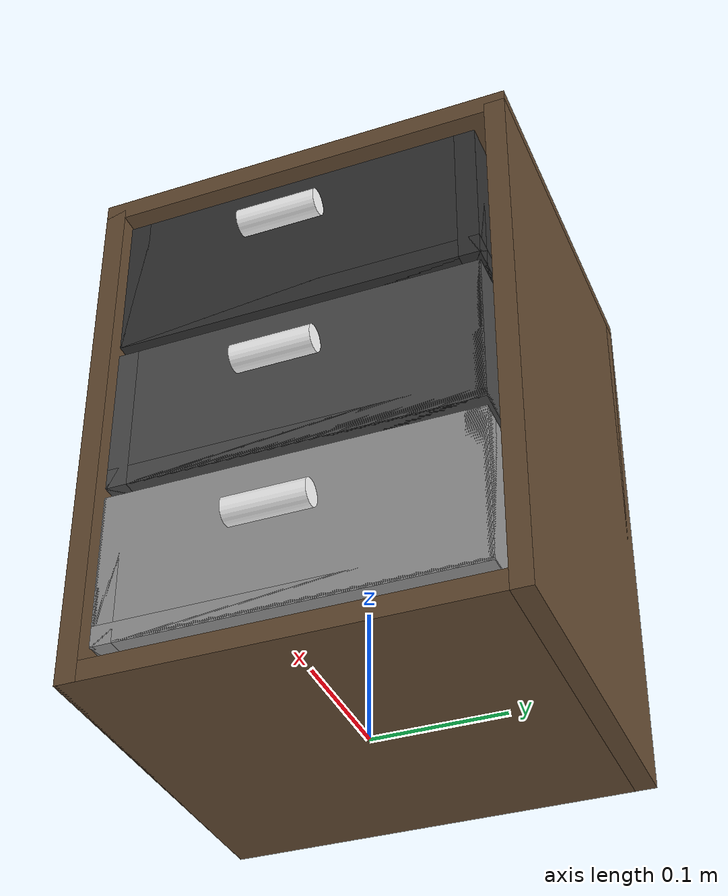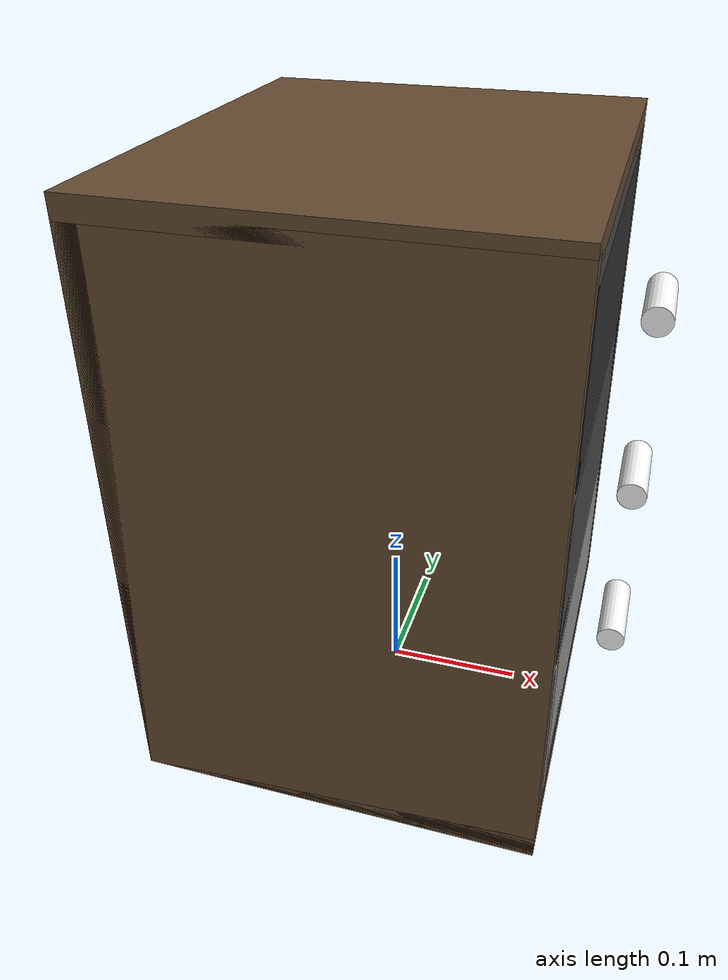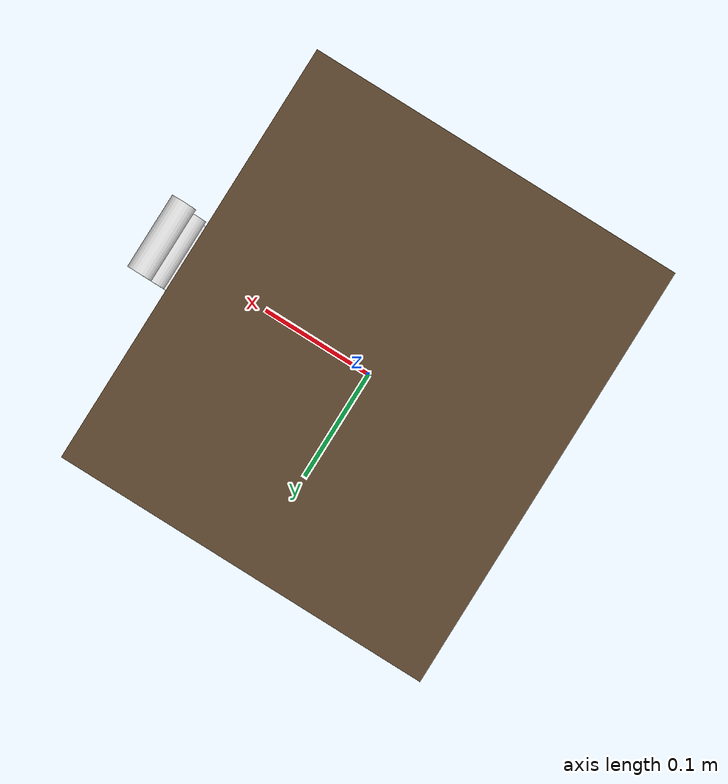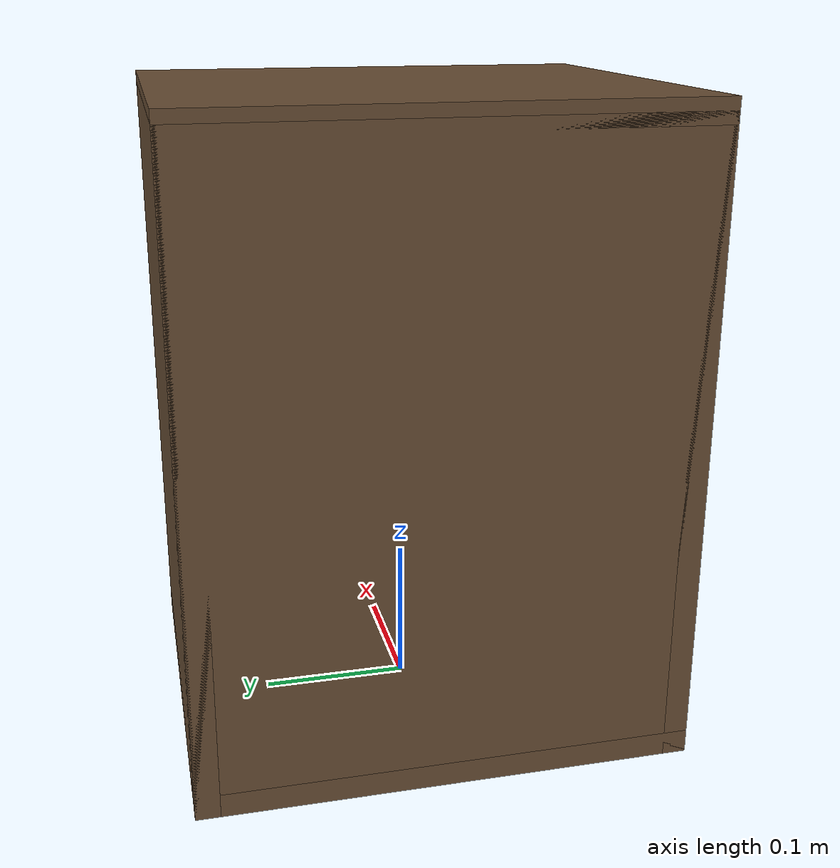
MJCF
<mujoco model="drawer">
  <compiler angle="radian" autolimits="true" />
  <option impratio="10" />
  <default>
    <default class="visual">
      <geom type="mesh" contype="0" conaffinity="0" group="2" />
    </default>
    <default class="collision">
      <geom type="mesh" group="3" />
    </default>
  </default>

  <asset>
    <material name="drawer_material" rgba="0.4 0.3 0.2 1" />
  </asset>
  <worldbody>
    <body name="drawer">
      <geom size="0.144 0.008 0.212" pos="0 -0.15600000000000003 0.212" class="visual" type="box"
        material="drawer_material" />
      <geom size="0.144 0.008 0.212" pos="0 0.15600000000000003 0.212" class="visual" type="box"
        material="drawer_material" />
      <geom size="0.144 0.164 0.008" pos="0 0 0.008" class="visual" type="box"
        material="drawer_material" />
      <geom size="0.144 0.164 0.008" pos="0 0 0.424" class="visual" type="box"
        material="drawer_material" />
      <geom size="0.008 0.164 0.212" pos="-0.136 0 0.212" class="visual" type="box"
        material="drawer_material" />

      <geom size="0.144 0.008 0.212" pos="0 -0.15600000000000003 0.212" class="collision" type="box" />
      <geom size="0.144 0.008 0.212" pos="0 0.15600000000000003 0.212" class="collision" type="box" />
      <geom size="0.144 0.164 0.008" pos="0 0 0.008" class="collision" type="box" />
      <geom size="0.144 0.164 0.008" pos="0 0 0.424" class="collision" type="box" />
      <geom size="0.008 0.164 0.212" pos="-0.136 0 0.212" class="collision" type="box" />

      <body name="bottom_drawer" pos="0.024 0 0.08399999999999999">
        <joint name="bottom_drawer_slide" type="slide" axis="1 0 0" limited="true" range="0 0.24"
          damping="50.0" frictionloss="1.0" />

        <!-- bottom -->
        <geom size="0.12 0.14 0.008" class="visual" type="box" pos="0 0 -0.052"
          material="drawer_material" rgba="0.6 0.6 0.6 1"/>
        <!-- left and right -->
        <geom size="0.12 0.008 0.06" class="visual" type="box" pos="0 0.132 0"
          material="drawer_material" rgba="0.6 0.6 0.6 1"/>
        <geom size="0.12 0.008 0.06" class="visual" type="box" pos="0 -0.132 0"
          material="drawer_material" rgba="0.6 0.6 0.6 1"/>
        <!-- front and back -->
        <geom size="0.008 0.14 0.06" class="visual" type="box" pos="0.11199999999999999 0 0"
          material="drawer_material" rgba="0.6 0.6 0.6 1"/>
        <geom size="0.008 0.14 0.06" class="visual" type="box" pos="-0.11199999999999999 0 0"
          material="drawer_material" />

        <!-- bottom -->
        <geom size="0.12 0.14 0.008" class="collision" type="box" pos="0 0 -0.052" />
        <!-- left and right -->
        <geom size="0.12 0.008 0.06" class="collision" type="box" pos="0 0.132 0" />
        <geom size="0.12 0.008 0.06" class="collision" type="box" pos="0 -0.132 0" />
        <!-- front and back -->
        <geom size="0.008 0.14 0.06" class="collision" type="box" pos="0.11199999999999999 0 0" />
        <geom size="0.008 0.14 0.06" class="collision" type="box" pos="-0.11199999999999999 0 0" />

        <body name="bottom_drawer_handle" pos="0.15 0 0" euler="1.57 0 0">
          <geom size="0.01 0.03" class="visual" type="cylinder" material="drawer_material" rgba="1 1 1 1" />
          <geom size="0.01 0.03" class="collision" type="cylinder" />
        </body>
      </body>

      <body name="middle_drawer" pos="0.024 0 0.212">
        <joint name="middle_drawer_slide" type="slide" axis="1 0 0" limited="true" range="0 0.24"
          damping="50.0" frictionloss="1.0" />

        <!-- bottom -->
        <geom size="0.12 0.14 0.008" class="visual" type="box" pos="0 0 -0.052"
          material="drawer_material" rgba="0.3 0.3 0.3 1"/>
        <!-- left and right -->
        <geom size="0.12 0.008 0.06" class="visual" type="box" pos="0 0.132 0"
          material="drawer_material" rgba="0.3 0.3 0.3 1"/>
        <geom size="0.12 0.008 0.06" class="visual" type="box" pos="0 -0.132 0"
          material="drawer_material" rgba="0.3 0.3 0.3 1"/>
        <!-- front and back -->
        <geom size="0.008 0.14 0.06" class="visual" type="box" pos="0.11199999999999999 0 0"
          material="drawer_material" rgba="0.3 0.3 0.3 1"/>
        <geom size="0.008 0.14 0.06" class="visual" type="box" pos="-0.11199999999999999 0 0"
          material="drawer_material" />

        <!-- bottom -->
        <geom size="0.12 0.14 0.01" class="collision" type="box" pos="0 0 -0.052" />
        <!-- left and right -->
        <geom size="0.12 0.01 0.06" class="collision" type="box" pos="0 0.132 0" />
        <geom size="0.12 0.01 0.06" class="collision" type="box" pos="0 -0.132 0" />
        <!-- front and back -->
        <geom size="0.01 0.14 0.06" class="collision" type="box" pos="0.11199999999999999 0 0" />
        <geom size="0.01 0.14 0.06" class="collision" type="box" pos="-0.11199999999999999 0 0" />

        <body name="middle_drawer_handle" pos="0.15 0 0" euler="1.57 0 0">
          <geom size="0.01 0.03" class="visual" type="cylinder" material="drawer_material" rgba="1 1 1 1" />
          <geom size="0.01 0.03" class="collision" type="cylinder" />
        </body>
      </body>

      <body name="top_drawer" pos="0.024 0 0.33999999999999997">
        <joint name="top_drawer_slide" type="slide" axis="1 0 0" limited="true" range="-0.176 0.064"
          damping="50.0" frictionloss="1.0" />

        <!-- bottom -->
        <geom size="0.12 0.14 0.008" class="visual" type="box" pos="0 0 -0.052"
          material="drawer_material" rgba="0.2 0.2 0.2 1"/>
        <!-- left and right -->
        <geom size="0.12 0.008 0.06" class="visual" type="box" pos="0 0.132 0"
          material="drawer_material" rgba="0.2 0.2 0.2 1"/>
        <geom size="0.12 0.008 0.06" class="visual" type="box" pos="0 -0.132 0"
          material="drawer_material" rgba="0.2 0.2 0.2 1"/>
        <!-- front and back -->
        <geom size="0.008 0.14 0.06" class="visual" type="box" pos="0.11199999999999999 0 0"
          material="drawer_material" rgba="0.2 0.2 0.2 1"/>
        <geom size="0.008 0.14 0.06" class="visual" type="box" pos="-0.11199999999999999 0 0"
          material="drawer_material" />

        <!-- bottom -->
        <geom size="0.12 0.14 0.008" class="collision" type="box" pos="0 0 -0.052" />
        <!-- left and right -->
        <geom size="0.12 0.008 0.06" class="collision" type="box" pos="0 0.132 0" />
        <geom size="0.12 0.008 0.06" class="collision" type="box" pos="0 -0.132 0" />
        <!-- front and back -->
        <geom size="0.008 0.14 0.06" class="collision" type="box" pos="0.11199999999999999 0 0" />
        <geom size="0.008 0.14 0.06" class="collision" type="box" pos="-0.11199999999999999 0 0" />

        <body name="top_drawer_handle" pos="0.15 0 0" euler="1.57 0 0">
          <geom size="0.01 0.03" class="visual" type="cylinder" material="drawer_material" rgba="1 1 1 1" />
          <geom size="0.01 0.03" class="collision" type="cylinder" />
        </body>
      </body>
    </body>

  </worldbody>
</mujoco>
